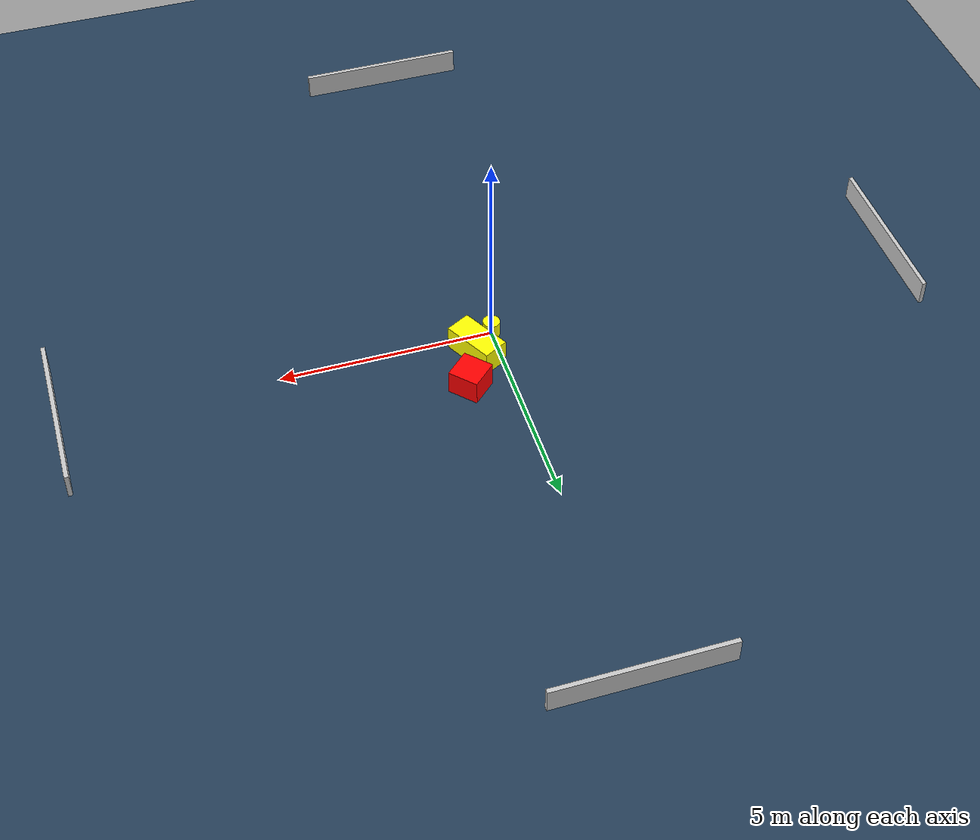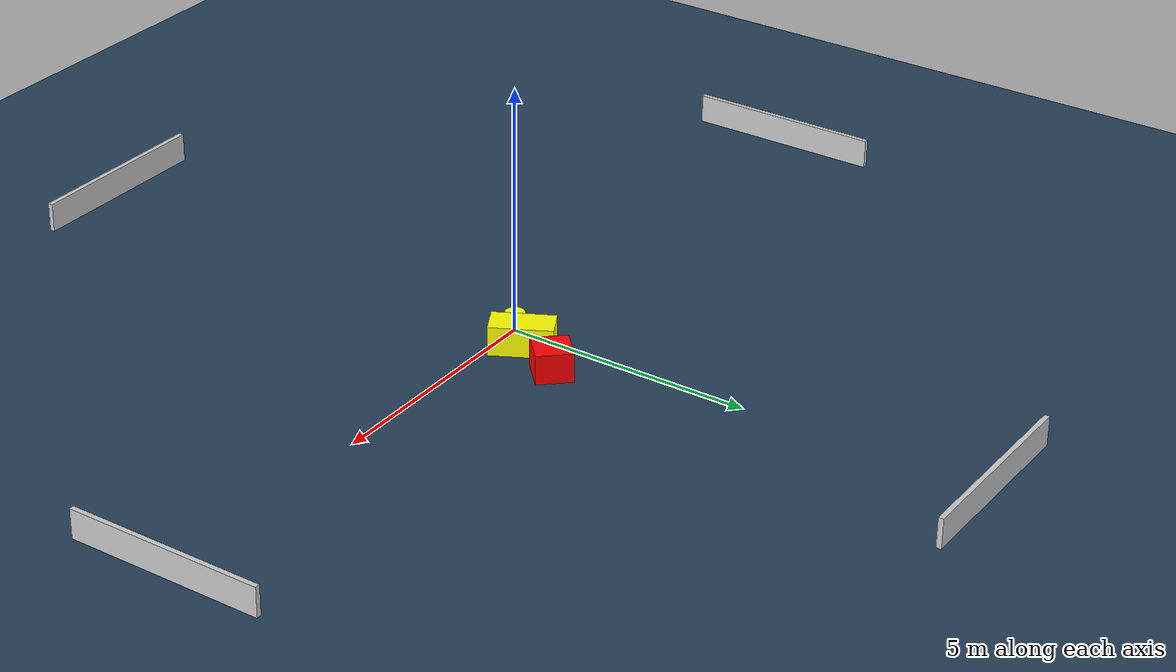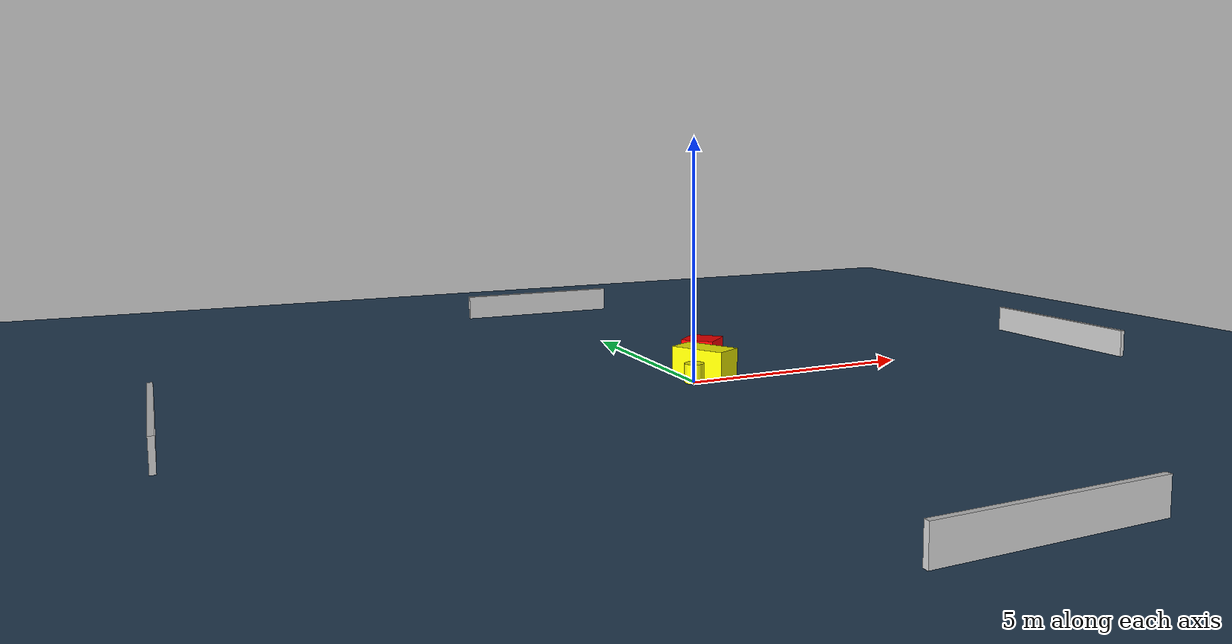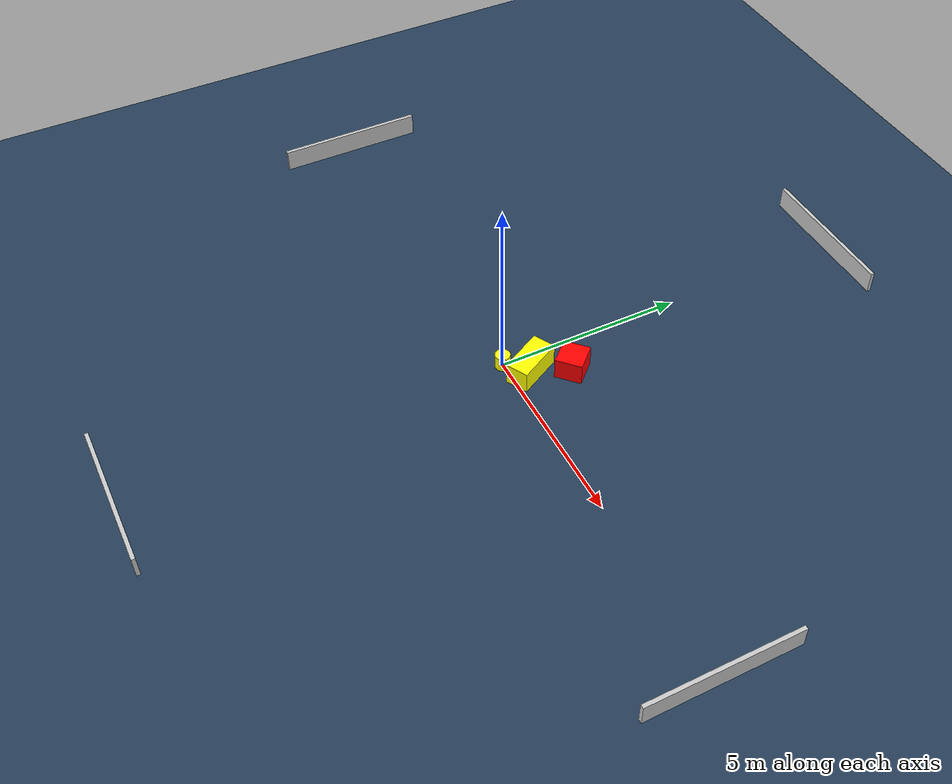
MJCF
<?xml version="1.0" ?>
<mujoco model="generated_environment">
  <option timestep="0.01" integrator="RK4" cone="elliptic"/>
  <default>
    <geom density="1"/>
  </default>
  <asset>
    <texture builtin="gradient" height="3072" name="skybox" rgb1="0.3 0.5 0.7" rgb2="0 0 0" type="skybox" width="512"/>
    <texture builtin="checker" height="300" name="groundplane" rgb1="0.2 0.3 0.4" rgb2="0.1 0.2 0.3" type="2d" width="300"/>
    <material name="groundplane" reflectance="0.2" texrepeat="5 5" texture="groundplane"/>
  </asset>
  <worldbody>
    <light dir="0 0 -1" directional="true" pos="0 0 1.5"/>
    <geom condim="3" friction="0.5 0.005 0.001" material="groundplane" name="floor" pos="0 0 0" size="0 0 0.05" type="plane"/>
    <body name="walls">
      <geom name="wall_1" condim="4" pos="-10.0 0.0 0.3" rgba="0.800000011920929 0.800000011920929 0.800000011920929 1.0" size="0.05 2.0 0.3" type="box"/>
      <geom name="wall_2" condim="4" pos="10.0 0.0 0.3" rgba="0.800000011920929 0.800000011920929 0.800000011920929 1.0" size="0.05 2.0 0.3" type="box"/>
      <geom name="wall_3" condim="4" pos="0.0 -10.0 0.3" rgba="0.800000011920929 0.800000011920929 0.800000011920929 1.0" size="2.0 0.05 0.3" type="box"/>
      <geom name="wall_4" condim="4" pos="0.0 10.0 0.3" rgba="0.800000011920929 0.800000011920929 0.800000011920929 1.0" size="2.0 0.05 0.3" type="box"/>
    </body>
    <body name="robot">
      <joint name="joint_x" type="slide" pos="0 0 0" axis="1 0 0"/>
      <joint name="joint_y" type="slide" pos="0 0 0" axis="0 1 0"/>
      <geom name="robot" type="cylinder" pos="0.0 0.0 0.2" size="0.2 0.2 0.0" mass="5.0" friction="1.0 0.005 0.0001" condim="4" rgba="1.0 1.0 0.0 1.0"/>
    </body>
    <body name="obstacle_1_movable">
      <geom name="obstacle_1_movable" condim="4" pos="0.5094913385995682 0.5235084740107399 0.3" euler="0 0 298.18115292802554" friction="0.0 0.005 0.001" rgba="1.0 1.0 0.0 1.0" size="0.6223380266265701 0.30767680931971786 0.3" type="box" mass="0.1"/>
      <joint type="free"/>
    </body>
    <body name="obstacle_2_static">
      <geom name="obstacle_2_static" condim="4" pos="0.944943952356466 1.4901971219587202 0.3" euler="0 0 133.2278214127305" friction="0.0 0.005 0.001" rgba="1.0 0.0 0.0 1.0" size="0.3643940878986486 0.35647383142612254 0.3" type="box"/>
    </body>
  </worldbody>
  <actuator>
    <motor name="actuator_x" joint="joint_x" gear="1" ctrlrange="-1 1"/>
    <motor name="actuator_y" joint="joint_y" gear="1" ctrlrange="-1 1"/>
  </actuator>
</mujoco>
